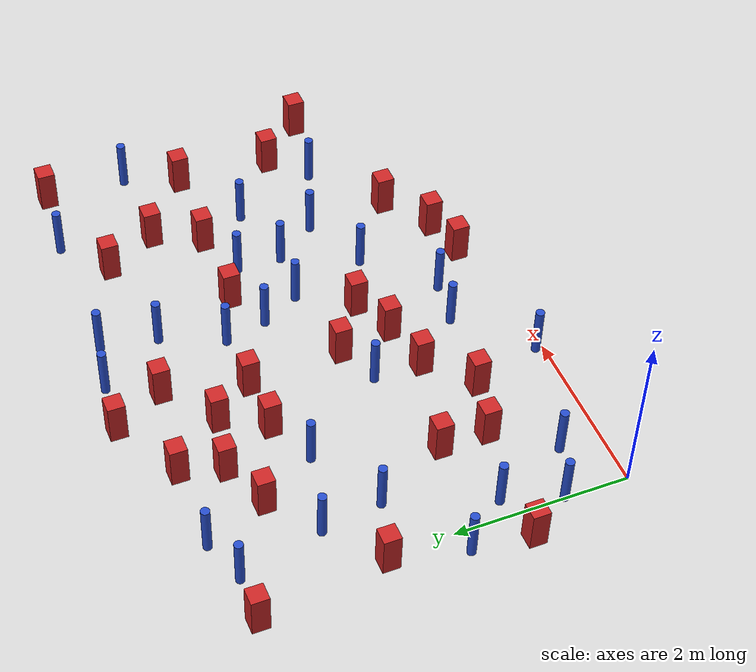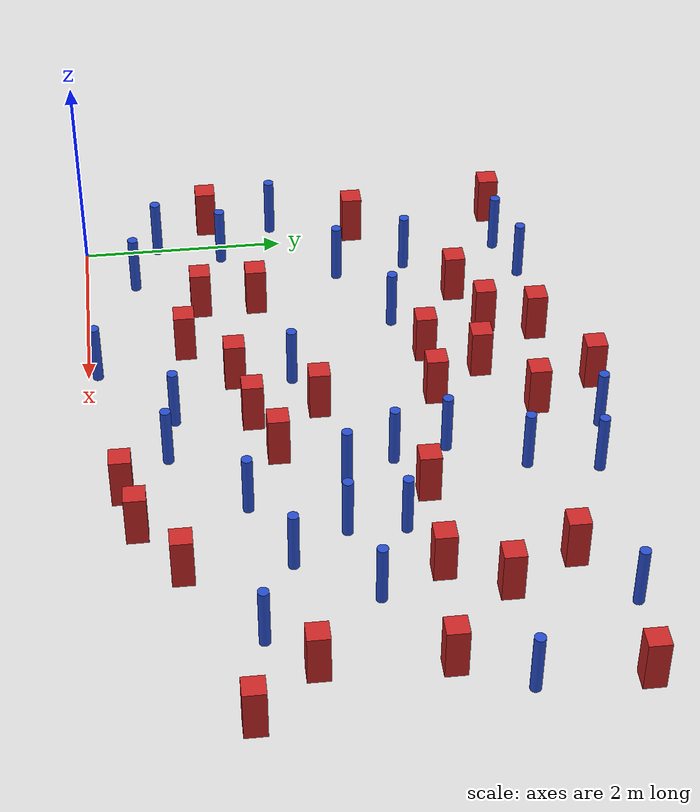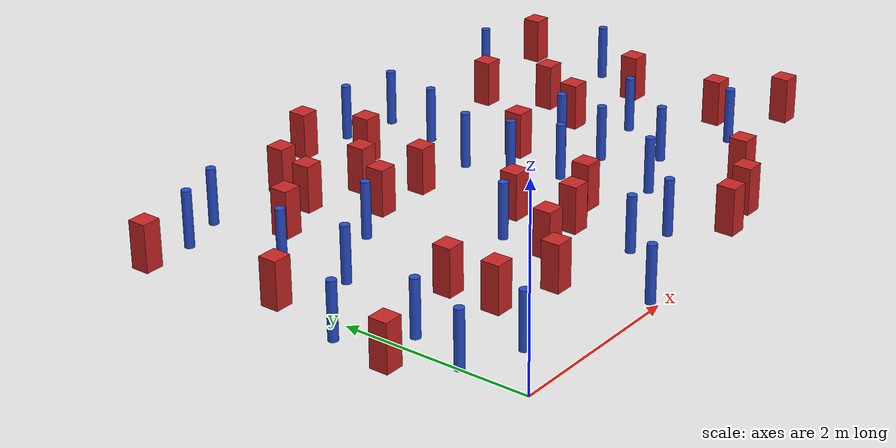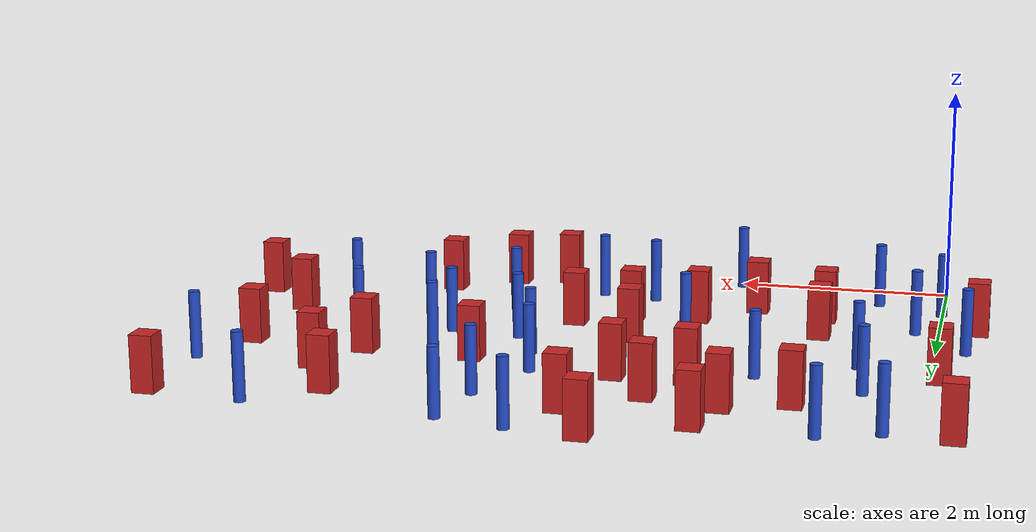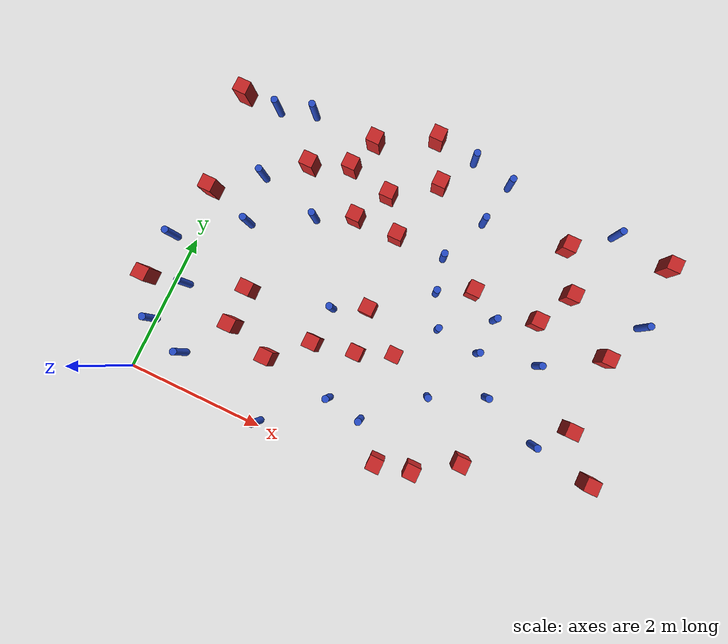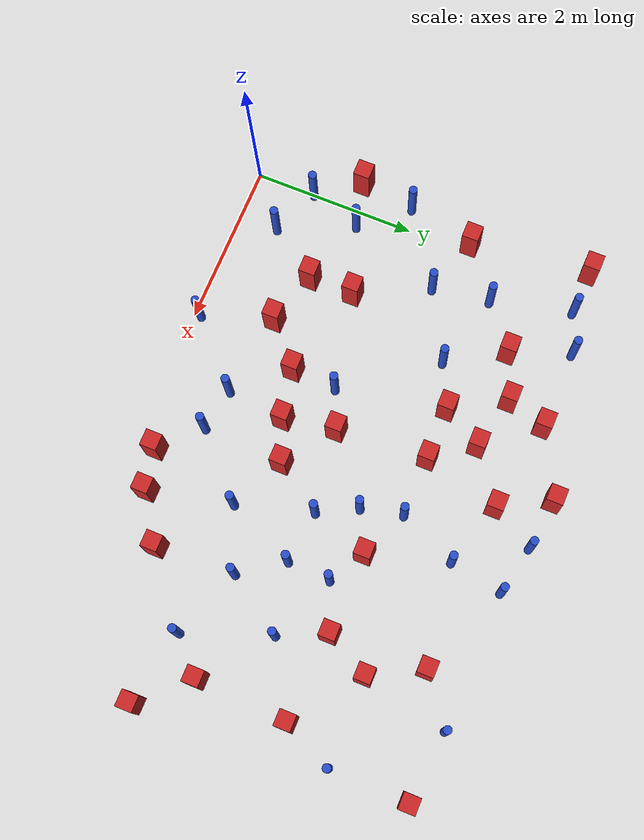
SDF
<sdf version="1.6">
 <model name="dense_25">
  <model name="square_post_obstacle2">
   <static>true</static>
   <pose>1.05752300624 1.68176623114 8.22691968438e-08 7.2212513382e-06 -7.54495500217e-07 2.29674213826e-05</pose>
   <link name="link">
    <pose>0 0 0.25 0 -0 0</pose>
    <inertial>
     <mass>100</mass>
     <inertia>
      <ixx>0.166667</ixx>
      <ixy>0</ixy>
      <ixz>0</ixz>
      <iyy>0.166667</iyy>
      <iyz>0</iyz>
      <izz>0.166667</izz>
     </inertia>
    </inertial>
    <collision name="collision"><geometry><box><size>.2 .2 .5</size></box></geometry></collision>
    <visual name="visual">
     <geometry><box><size>.2 .2 .5</size></box></geometry>
     <material>
      <script><name>Gazebo/Red</name><uri>file://media/materials/scripts/gazebo.material</uri></script>
     </material>
    </visual>
   </link>
  </model>
  <model name="square_post_obstacle7">
   <static>true</static>
   <pose>3.69847838354 0.283628622711 8.22691968438e-08 7.2212513382e-06 -7.54495500217e-07 2.29674213826e-05</pose>
   <link name="link">
    <pose>0 0 0.25 0 -0 0</pose>
    <inertial>
     <mass>100</mass>
     <inertia>
      <ixx>0.166667</ixx>
      <ixy>0</ixy>
      <ixz>0</ixz>
      <iyy>0.166667</iyy>
      <iyz>0</iyz>
      <izz>0.166667</izz>
     </inertia>
    </inertial>
    <collision name="collision"><geometry><box><size>.2 .2 .5</size></box></geometry></collision>
    <visual name="visual">
     <geometry><box><size>.2 .2 .5</size></box></geometry>
     <material>
      <script><name>Gazebo/Red</name><uri>file://media/materials/scripts/gazebo.material</uri></script>
     </material>
    </visual>
   </link>
  </model>
  <model name="square_post_obstacle10">
   <static>true</static>
   <pose>1.06012387388 1.13206869176 8.22691968438e-08 7.2212513382e-06 -7.54495500217e-07 2.29674213826e-05</pose>
   <link name="link">
    <pose>0 0 0.25 0 -0 0</pose>
    <inertial>
     <mass>100</mass>
     <inertia>
      <ixx>0.166667</ixx>
      <ixy>0</ixy>
      <ixz>0</ixz>
      <iyy>0.166667</iyy>
      <iyz>0</iyz>
      <izz>0.166667</izz>
     </inertia>
    </inertial>
    <collision name="collision"><geometry><box><size>.2 .2 .5</size></box></geometry></collision>
    <visual name="visual">
     <geometry><box><size>.2 .2 .5</size></box></geometry>
     <material>
      <script><name>Gazebo/Red</name><uri>file://media/materials/scripts/gazebo.material</uri></script>
     </material>
    </visual>
   </link>
  </model>
  <model name="square_post_obstacle17">
   <static>true</static>
   <pose>4.7562189727 0.773854882955 8.22691968438e-08 7.2212513382e-06 -7.54495500217e-07 2.29674213826e-05</pose>
   <link name="link">
    <pose>0 0 0.25 0 -0 0</pose>
    <inertial>
     <mass>100</mass>
     <inertia>
      <ixx>0.166667</ixx>
      <ixy>0</ixy>
      <ixz>0</ixz>
      <iyy>0.166667</iyy>
      <iyz>0</iyz>
      <izz>0.166667</izz>
     </inertia>
    </inertial>
    <collision name="collision"><geometry><box><size>.2 .2 .5</size></box></geometry></collision>
    <visual name="visual">
     <geometry><box><size>.2 .2 .5</size></box></geometry>
     <material>
      <script><name>Gazebo/Red</name><uri>file://media/materials/scripts/gazebo.material</uri></script>
     </material>
    </visual>
   </link>
  </model>
  <model name="square_post_obstacle21">
   <static>true</static>
   <pose>6.45568140457 1.25670714428 8.22691968438e-08 7.2212513382e-06 -7.54495500217e-07 2.29674213826e-05</pose>
   <link name="link">
    <pose>0 0 0.25 0 -0 0</pose>
    <inertial>
     <mass>100</mass>
     <inertia>
      <ixx>0.166667</ixx>
      <ixy>0</ixy>
      <ixz>0</ixz>
      <iyy>0.166667</iyy>
      <iyz>0</iyz>
      <izz>0.166667</izz>
     </inertia>
    </inertial>
    <collision name="collision"><geometry><box><size>.2 .2 .5</size></box></geometry></collision>
    <visual name="visual">
     <geometry><box><size>.2 .2 .5</size></box></geometry>
     <material>
      <script><name>Gazebo/Red</name><uri>file://media/materials/scripts/gazebo.material</uri></script>
     </material>
    </visual>
   </link>
  </model>
  <model name="pole_obstacle27">
   <static>true</static>
   <pose>3.25971585323 0.710181024626 2.88873142074e-08 -9.90536689285e-09 4.60219949002e-07 -1.20965994953e-07</pose>
   <link name="link">
    <pose>0 0 0.3 0 -0 0</pose>
    <inertial>
     <mass>1</mass>
     <inertia><ixx>0.145833</ixx><ixy>0</ixy><ixz>0</ixz><iyy>0.145833</iyy><iyz>0</iyz><izz>0.125</izz></inertia>
    </inertial>
    <collision name="collision">
     <geometry><cylinder><radius>0.05</radius><length>.6</length></cylinder></geometry>
    </collision>
    <visual name="visual">
     <geometry><cylinder><radius>0.05</radius><length>.6</length></cylinder></geometry>
     <material>
      <script><name>Gazebo/Blue</name><uri>file://media/materials/scripts/gazebo.material</uri></script>
     </material>
    </visual>
   </link>
  </model>
  <model name="pole_obstacle41">
   <static>true</static>
   <pose>5.18488431117 2.42695143436 2.88873142074e-08 -9.90536690245e-09 4.6021994898e-07 -1.20965994966e-07</pose>
   <link name="link">
    <pose>0 0 0.3 0 -0 0</pose>
    <inertial>
     <mass>1</mass>
     <inertia><ixx>0.145833</ixx><ixy>0</ixy><ixz>0</ixz><iyy>0.145833</iyy><iyz>0</iyz><izz>0.125</izz></inertia>
    </inertial>
    <collision name="collision">
     <geometry><cylinder><radius>0.05</radius><length>.6</length></cylinder></geometry>
    </collision>
    <visual name="visual">
     <geometry><cylinder><radius>0.05</radius><length>.6</length></cylinder></geometry>
     <material>
      <script><name>Gazebo/Blue</name><uri>file://media/materials/scripts/gazebo.material</uri></script>
     </material>
    </visual>
   </link>
  </model>
  <model name="pole_obstacle44">
   <static>true</static>
   <pose>-0.259046018101 1.92639556292 2.88873142074e-08 -9.9053668969e-09 4.60219948993e-07 -1.20965994957e-07</pose>
   <link name="link">
    <pose>0 0 0.3 0 -0 0</pose>
    <inertial>
     <mass>1</mass>
     <inertia><ixx>0.145833</ixx><ixy>0</ixy><ixz>0</ixz><iyy>0.145833</iyy><iyz>0</iyz><izz>0.125</izz></inertia>
    </inertial>
    <collision name="collision">
     <geometry><cylinder><radius>0.05</radius><length>.6</length></cylinder></geometry>
    </collision>
    <visual name="visual">
     <geometry><cylinder><radius>0.05</radius><length>.6</length></cylinder></geometry>
     <material>
      <script><name>Gazebo/Blue</name><uri>file://media/materials/scripts/gazebo.material</uri></script>
     </material>
    </visual>
   </link>
  </model>
  <model name="pole_obstacle45">
   <static>true</static>
   <pose>3.97215387689 1.3896070158 2.88873142074e-08 -9.90536689315e-09 4.60219949002e-07 -1.20965994954e-07</pose>
   <link name="link">
    <pose>0 0 0.3 0 -0 0</pose>
    <inertial>
     <mass>1</mass>
     <inertia><ixx>0.145833</ixx><ixy>0</ixy><ixz>0</ixz><iyy>0.145833</iyy><iyz>0</iyz><izz>0.125</izz></inertia>
    </inertial>
    <collision name="collision">
     <geometry><cylinder><radius>0.05</radius><length>.6</length></cylinder></geometry>
    </collision>
    <visual name="visual">
     <geometry><cylinder><radius>0.05</radius><length>.6</length></cylinder></geometry>
     <material>
      <script><name>Gazebo/Blue</name><uri>file://media/materials/scripts/gazebo.material</uri></script>
     </material>
    </visual>
   </link>
  </model>
  <model name="square_post_obstacle44">
   <static>true</static>
   <pose>6.30355910788 4.48778055035 8.22691968438e-08 7.2212513382e-06 -7.54495500217e-07 2.29674213826e-05</pose>
   <link name="link">
    <pose>0 0 0.25 0 -0 0</pose>
    <inertial>
     <mass>100</mass>
     <inertia>
      <ixx>0.166667</ixx>
      <ixy>0</ixy>
      <ixz>0</ixz>
      <iyy>0.166667</iyy>
      <iyz>0</iyz>
      <izz>0.166667</izz>
     </inertia>
    </inertial>
    <collision name="collision"><geometry><box><size>.2 .2 .5</size></box></geometry></collision>
    <visual name="visual">
     <geometry><box><size>.2 .2 .5</size></box></geometry>
     <material>
      <script><name>Gazebo/Red</name><uri>file://media/materials/scripts/gazebo.material</uri></script>
     </material>
    </visual>
   </link>
  </model>
  <model name="pole_obstacle49">
   <static>true</static>
   <pose>4.71426595015 1.72589574953 2.88873142074e-08 -9.90536689445e-09 4.60219948999e-07 -1.20965994956e-07</pose>
   <link name="link">
    <pose>0 0 0.3 0 -0 0</pose>
    <inertial>
     <mass>1</mass>
     <inertia><ixx>0.145833</ixx><ixy>0</ixy><ixz>0</ixz><iyy>0.145833</iyy><iyz>0</iyz><izz>0.125</izz></inertia>
    </inertial>
    <collision name="collision">
     <geometry><cylinder><radius>0.05</radius><length>.6</length></cylinder></geometry>
    </collision>
    <visual name="visual">
     <geometry><cylinder><radius>0.05</radius><length>.6</length></cylinder></geometry>
     <material>
      <script><name>Gazebo/Blue</name><uri>file://media/materials/scripts/gazebo.material</uri></script>
     </material>
    </visual>
   </link>
  </model>
  <model name="square_post_obstacle54">
   <static>true</static>
   <pose>1.7156146805 0.942488484448 8.22691968438e-08 7.2212513382e-06 -7.54495500217e-07 2.29674213826e-05</pose>
   <link name="link">
    <pose>0 0 0.25 0 -0 0</pose>
    <inertial>
     <mass>100</mass>
     <inertia>
      <ixx>0.166667</ixx>
      <ixy>0</ixy>
      <ixz>0</ixz>
      <iyy>0.166667</iyy>
      <iyz>0</iyz>
      <izz>0.166667</izz>
     </inertia>
    </inertial>
    <collision name="collision"><geometry><box><size>.2 .2 .5</size></box></geometry></collision>
    <visual name="visual">
     <geometry><box><size>.2 .2 .5</size></box></geometry>
     <material>
      <script><name>Gazebo/Red</name><uri>file://media/materials/scripts/gazebo.material</uri></script>
     </material>
    </visual>
   </link>
  </model>
  <model name="square_post_obstacle57">
   <static>true</static>
   <pose>5.21335566755 3.52832100325 8.22691968438e-08 7.2212513382e-06 -7.54495500217e-07 2.29674213826e-05</pose>
   <link name="link">
    <pose>0 0 0.25 0 -0 0</pose>
    <inertial>
     <mass>100</mass>
     <inertia>
      <ixx>0.166667</ixx>
      <ixy>0</ixy>
      <ixz>0</ixz>
      <iyy>0.166667</iyy>
      <iyz>0</iyz>
      <izz>0.166667</izz>
     </inertia>
    </inertial>
    <collision name="collision"><geometry><box><size>.2 .2 .5</size></box></geometry></collision>
    <visual name="visual">
     <geometry><box><size>.2 .2 .5</size></box></geometry>
     <material>
      <script><name>Gazebo/Red</name><uri>file://media/materials/scripts/gazebo.material</uri></script>
     </material>
    </visual>
   </link>
  </model>
  <model name="pole_obstacle56">
   <static>true</static>
   <pose>3.71044648429 2.29824718554 2.88873142074e-08 -9.90536690232e-09 4.6021994898e-07 -1.20965994968e-07</pose>
   <link name="link">
    <pose>0 0 0.3 0 -0 0</pose>
    <inertial>
     <mass>1</mass>
     <inertia><ixx>0.145833</ixx><ixy>0</ixy><ixz>0</ixz><iyy>0.145833</iyy><iyz>0</iyz><izz>0.125</izz></inertia>
    </inertial>
    <collision name="collision">
     <geometry><cylinder><radius>0.05</radius><length>.6</length></cylinder></geometry>
    </collision>
    <visual name="visual">
     <geometry><cylinder><radius>0.05</radius><length>.6</length></cylinder></geometry>
     <material>
      <script><name>Gazebo/Blue</name><uri>file://media/materials/scripts/gazebo.material</uri></script>
     </material>
    </visual>
   </link>
  </model>
  <model name="pole_obstacle69">
   <static>true</static>
   <pose>6.29559286488 3.53321743497 2.88873142074e-08 -9.90536690245e-09 4.6021994898e-07 -1.20965994966e-07</pose>
   <link name="link">
    <pose>0 0 0.3 0 -0 0</pose>
    <inertial>
     <mass>1</mass>
     <inertia><ixx>0.145833</ixx><ixy>0</ixy><ixz>0</ixz><iyy>0.145833</iyy><iyz>0</iyz><izz>0.125</izz></inertia>
    </inertial>
    <collision name="collision">
     <geometry><cylinder><radius>0.05</radius><length>.6</length></cylinder></geometry>
    </collision>
    <visual name="visual">
     <geometry><cylinder><radius>0.05</radius><length>.6</length></cylinder></geometry>
     <material>
      <script><name>Gazebo/Blue</name><uri>file://media/materials/scripts/gazebo.material</uri></script>
     </material>
    </visual>
   </link>
  </model>
  <model name="pole_obstacle78">
   <static>true</static>
   <pose>0.0105703775134 0.736466215707 2.88873142074e-08 -9.90536690131e-09 4.60219948982e-07 -1.20965994965e-07</pose>
   <link name="link">
    <pose>0 0 0.3 0 -0 0</pose>
    <inertial>
     <mass>1</mass>
     <inertia><ixx>0.145833</ixx><ixy>0</ixy><ixz>0</ixz><iyy>0.145833</iyy><iyz>0</iyz><izz>0.125</izz></inertia>
    </inertial>
    <collision name="collision">
     <geometry><cylinder><radius>0.05</radius><length>.6</length></cylinder></geometry>
    </collision>
    <visual name="visual">
     <geometry><cylinder><radius>0.05</radius><length>.6</length></cylinder></geometry>
     <material>
      <script><name>Gazebo/Blue</name><uri>file://media/materials/scripts/gazebo.material</uri></script>
     </material>
    </visual>
   </link>
  </model>
  <model name="pole_obstacle82">
   <static>true</static>
   <pose>0.21373768609 1.38207081856 2.88873142074e-08 -9.90536690118e-09 4.60219948983e-07 -1.20965994965e-07</pose>
   <link name="link">
    <pose>0 0 0.3 0 -0 0</pose>
    <inertial>
     <mass>1</mass>
     <inertia><ixx>0.145833</ixx><ixy>0</ixy><ixz>0</ixz><iyy>0.145833</iyy><iyz>0</iyz><izz>0.125</izz></inertia>
    </inertial>
    <collision name="collision">
     <geometry><cylinder><radius>0.05</radius><length>.6</length></cylinder></geometry>
    </collision>
    <visual name="visual">
     <geometry><cylinder><radius>0.05</radius><length>.6</length></cylinder></geometry>
     <material>
      <script><name>Gazebo/Blue</name><uri>file://media/materials/scripts/gazebo.material</uri></script>
     </material>
    </visual>
   </link>
  </model>
  <model name="pole_obstacle84">
   <static>true</static>
   <pose>0.608661664076 0.492104536853 2.88873142074e-08 -9.90536689656e-09 4.60219948993e-07 -1.20965994957e-07</pose>
   <link name="link">
    <pose>0 0 0.3 0 -0 0</pose>
    <inertial>
     <mass>1</mass>
     <inertia><ixx>0.145833</ixx><ixy>0</ixy><ixz>0</ixz><iyy>0.145833</iyy><iyz>0</iyz><izz>0.125</izz></inertia>
    </inertial>
    <collision name="collision">
     <geometry><cylinder><radius>0.05</radius><length>.6</length></cylinder></geometry>
    </collision>
    <visual name="visual">
     <geometry><cylinder><radius>0.05</radius><length>.6</length></cylinder></geometry>
     <material>
      <script><name>Gazebo/Blue</name><uri>file://media/materials/scripts/gazebo.material</uri></script>
     </material>
    </visual>
   </link>
  </model>
  <model name="pole_obstacle85">
   <static>true</static>
   <pose>1.99145522379 0.0883656927276 2.88873142074e-08 -9.90536691348e-09 4.60219948953e-07 -1.20965994985e-07</pose>
   <link name="link">
    <pose>0 0 0.3 0 -0 0</pose>
    <inertial>
     <mass>1</mass>
     <inertia><ixx>0.145833</ixx><ixy>0</ixy><ixz>0</ixz><iyy>0.145833</iyy><iyz>0</iyz><izz>0.125</izz></inertia>
    </inertial>
    <collision name="collision">
     <geometry><cylinder><radius>0.05</radius><length>.6</length></cylinder></geometry>
    </collision>
    <visual name="visual">
     <geometry><cylinder><radius>0.05</radius><length>.6</length></cylinder></geometry>
     <material>
      <script><name>Gazebo/Blue</name><uri>file://media/materials/scripts/gazebo.material</uri></script>
     </material>
    </visual>
   </link>
  </model>
  <model name="pole_obstacle86">
   <static>true</static>
   <pose>0.523984293658 3.24302448291 2.88873142074e-08 -9.90536689505e-09 4.60219948997e-07 -1.20965994956e-07</pose>
   <link name="link">
    <pose>0 0 0.3 0 -0 0</pose>
    <inertial>
     <mass>1</mass>
     <inertia><ixx>0.145833</ixx><ixy>0</ixy><ixz>0</ixz><iyy>0.145833</iyy><iyz>0</iyz><izz>0.125</izz></inertia>
    </inertial>
    <collision name="collision">
     <geometry><cylinder><radius>0.05</radius><length>.6</length></cylinder></geometry>
    </collision>
    <visual name="visual">
     <geometry><cylinder><radius>0.05</radius><length>.6</length></cylinder></geometry>
     <material>
      <script><name>Gazebo/Blue</name><uri>file://media/materials/scripts/gazebo.material</uri></script>
     </material>
    </visual>
   </link>
  </model>
  <model name="pole_obstacle87">
   <static>true</static>
   <pose>4.35390807123 2.2327341651 2.88873142074e-08 -9.90536690245e-09 4.6021994898e-07 -1.20965994966e-07</pose>
   <link name="link">
    <pose>0 0 0.3 0 -0 0</pose>
    <inertial>
     <mass>1</mass>
     <inertia><ixx>0.145833</ixx><ixy>0</ixy><ixz>0</ixz><iyy>0.145833</iyy><iyz>0</iyz><izz>0.125</izz></inertia>
    </inertial>
    <collision name="collision">
     <geometry><cylinder><radius>0.05</radius><length>.6</length></cylinder></geometry>
    </collision>
    <visual name="visual">
     <geometry><cylinder><radius>0.05</radius><length>.6</length></cylinder></geometry>
     <material>
      <script><name>Gazebo/Blue</name><uri>file://media/materials/scripts/gazebo.material</uri></script>
     </material>
    </visual>
   </link>
  </model>
  <model name="pole_obstacle98">
   <static>true</static>
   <pose>5.56217445543 1.40648228304 2.88873142074e-08 -9.90536689445e-09 4.60219948999e-07 -1.20965994956e-07</pose>
   <link name="link">
    <pose>0 0 0.3 0 -0 0</pose>
    <inertial>
     <mass>1</mass>
     <inertia><ixx>0.145833</ixx><ixy>0</ixy><ixz>0</ixz><iyy>0.145833</iyy><iyz>0</iyz><izz>0.125</izz></inertia>
    </inertial>
    <collision name="collision">
     <geometry><cylinder><radius>0.05</radius><length>.6</length></cylinder></geometry>
    </collision>
    <visual name="visual">
     <geometry><cylinder><radius>0.05</radius><length>.6</length></cylinder></geometry>
     <material>
      <script><name>Gazebo/Blue</name><uri>file://media/materials/scripts/gazebo.material</uri></script>
     </material>
    </visual>
   </link>
  </model>
  <model name="pole_obstacle100">
   <static>true</static>
   <pose>5.44715196854 4.5788040256 2.88873142074e-08 -9.90536690842e-09 4.60219948965e-07 -1.20965994976e-07</pose>
   <link name="link">
    <pose>0 0 0.3 0 -0 0</pose>
    <inertial>
     <mass>1</mass>
     <inertia><ixx>0.145833</ixx><ixy>0</ixy><ixz>0</ixz><iyy>0.145833</iyy><iyz>0</iyz><izz>0.125</izz></inertia>
    </inertial>
    <collision name="collision">
     <geometry><cylinder><radius>0.05</radius><length>.6</length></cylinder></geometry>
    </collision>
    <visual name="visual">
     <geometry><cylinder><radius>0.05</radius><length>.6</length></cylinder></geometry>
     <material>
      <script><name>Gazebo/Blue</name><uri>file://media/materials/scripts/gazebo.material</uri></script>
     </material>
    </visual>
   </link>
  </model>
  <model name="square_post_obstacle90">
   <static>true</static>
   <pose>4.19303620978 0.398959268594 8.22691968438e-08 7.2212513382e-06 -7.54495500217e-07 2.29674213826e-05</pose>
   <link name="link">
    <pose>0 0 0.25 0 -0 0</pose>
    <inertial>
     <mass>100</mass>
     <inertia>
      <ixx>0.166667</ixx>
      <ixy>0</ixy>
      <ixz>0</ixz>
      <iyy>0.166667</iyy>
      <iyz>0</iyz>
      <izz>0.166667</izz>
     </inertia>
    </inertial>
    <collision name="collision"><geometry><box><size>.2 .2 .5</size></box></geometry></collision>
    <visual name="visual">
     <geometry><box><size>.2 .2 .5</size></box></geometry>
     <material>
      <script><name>Gazebo/Red</name><uri>file://media/materials/scripts/gazebo.material</uri></script>
     </material>
    </visual>
   </link>
  </model>
  <model name="square_post_obstacle92">
   <static>true</static>
   <pose>2.70662991358 2.15097162154 8.22691968438e-08 7.2212513382e-06 -7.54495500217e-07 2.29674213826e-05</pose>
   <link name="link">
    <pose>0 0 0.25 0 -0 0</pose>
    <inertial>
     <mass>100</mass>
     <inertia>
      <ixx>0.166667</ixx>
      <ixy>0</ixy>
      <ixz>0</ixz>
      <iyy>0.166667</iyy>
      <iyz>0</iyz>
      <izz>0.166667</izz>
     </inertia>
    </inertial>
    <collision name="collision"><geometry><box><size>.2 .2 .5</size></box></geometry></collision>
    <visual name="visual">
     <geometry><box><size>.2 .2 .5</size></box></geometry>
     <material>
      <script><name>Gazebo/Red</name><uri>file://media/materials/scripts/gazebo.material</uri></script>
     </material>
    </visual>
   </link>
  </model>
  <model name="square_post_obstacle99">
   <static>true</static>
   <pose>6.00378001598 2.92106011117 8.22691968438e-08 7.2212513382e-06 -7.54495500217e-07 2.29674213826e-05</pose>
   <link name="link">
    <pose>0 0 0.25 0 -0 0</pose>
    <inertial>
     <mass>100</mass>
     <inertia>
      <ixx>0.166667</ixx>
      <ixy>0</ixy>
      <ixz>0</ixz>
      <iyy>0.166667</iyy>
      <iyz>0</iyz>
      <izz>0.166667</izz>
     </inertia>
    </inertial>
    <collision name="collision"><geometry><box><size>.2 .2 .5</size></box></geometry></collision>
    <visual name="visual">
     <geometry><box><size>.2 .2 .5</size></box></geometry>
     <material>
      <script><name>Gazebo/Red</name><uri>file://media/materials/scripts/gazebo.material</uri></script>
     </material>
    </visual>
   </link>
  </model>
  <model name="pole_obstacle113">
   <static>true</static>
   <pose>0.784421894727 4.39077616772 2.88873142074e-08 -9.90536689661e-09 4.60219948993e-07 -1.20965994957e-07</pose>
   <link name="link">
    <pose>0 0 0.3 0 -0 0</pose>
    <inertial>
     <mass>1</mass>
     <inertia><ixx>0.145833</ixx><ixy>0</ixy><ixz>0</ixz><iyy>0.145833</iyy><iyz>0</iyz><izz>0.125</izz></inertia>
    </inertial>
    <collision name="collision">
     <geometry><cylinder><radius>0.05</radius><length>.6</length></cylinder></geometry>
    </collision>
    <visual name="visual">
     <geometry><cylinder><radius>0.05</radius><length>.6</length></cylinder></geometry>
     <material>
      <script><name>Gazebo/Blue</name><uri>file://media/materials/scripts/gazebo.material</uri></script>
     </material>
    </visual>
   </link>
  </model>
  <model name="square_post_obstacle107">
   <static>true</static>
   <pose>2.81394870366 1.51973048059 8.22691968438e-08 7.2212513382e-06 -7.54495500217e-07 2.29674213826e-05</pose>
   <link name="link">
    <pose>0 0 0.25 0 -0 0</pose>
    <inertial>
     <mass>100</mass>
     <inertia>
      <ixx>0.166667</ixx>
      <ixy>0</ixy>
      <ixz>0</ixz>
      <iyy>0.166667</iyy>
      <iyz>0</iyz>
      <izz>0.166667</izz>
     </inertia>
    </inertial>
    <collision name="collision"><geometry><box><size>.2 .2 .5</size></box></geometry></collision>
    <visual name="visual">
     <geometry><box><size>.2 .2 .5</size></box></geometry>
     <material>
      <script><name>Gazebo/Red</name><uri>file://media/materials/scripts/gazebo.material</uri></script>
     </material>
    </visual>
   </link>
  </model>
  <model name="pole_obstacle123">
   <static>true</static>
   <pose>0.280689724129 4.22093316909 2.88873142074e-08 -9.90536689592e-09 4.60219948995e-07 -1.20965994956e-07</pose>
   <link name="link">
    <pose>0 0 0.3 0 -0 0</pose>
    <inertial>
     <mass>1</mass>
     <inertia><ixx>0.145833</ixx><ixy>0</ixy><ixz>0</ixz><iyy>0.145833</iyy><iyz>0</iyz><izz>0.125</izz></inertia>
    </inertial>
    <collision name="collision">
     <geometry><cylinder><radius>0.05</radius><length>.6</length></cylinder></geometry>
    </collision>
    <visual name="visual">
     <geometry><cylinder><radius>0.05</radius><length>.6</length></cylinder></geometry>
     <material>
      <script><name>Gazebo/Blue</name><uri>file://media/materials/scripts/gazebo.material</uri></script>
     </material>
    </visual>
   </link>
  </model>
  <model name="pole_obstacle127">
   <static>true</static>
   <pose>1.45623892513 2.99795898132 2.88873142074e-08 -9.90536689791e-09 4.6021994899e-07 -1.20965994959e-07</pose>
   <link name="link">
    <pose>0 0 0.3 0 -0 0</pose>
    <inertial>
     <mass>1</mass>
     <inertia><ixx>0.145833</ixx><ixy>0</ixy><ixz>0</ixz><iyy>0.145833</iyy><iyz>0</iyz><izz>0.125</izz></inertia>
    </inertial>
    <collision name="collision">
     <geometry><cylinder><radius>0.05</radius><length>.6</length></cylinder></geometry>
    </collision>
    <visual name="visual">
     <geometry><cylinder><radius>0.05</radius><length>.6</length></cylinder></geometry>
     <material>
      <script><name>Gazebo/Blue</name><uri>file://media/materials/scripts/gazebo.material</uri></script>
     </material>
    </visual>
   </link>
  </model>
  <model name="pole_obstacle128">
   <static>true</static>
   <pose>3.17594143469 4.73082257719 2.88873142074e-08 -9.90536689859e-09 4.60219948989e-07 -1.20965994961e-07</pose>
   <link name="link">
    <pose>0 0 0.3 0 -0 0</pose>
    <inertial>
     <mass>1</mass>
     <inertia><ixx>0.145833</ixx><ixy>0</ixy><ixz>0</ixz><iyy>0.145833</iyy><iyz>0</iyz><izz>0.125</izz></inertia>
    </inertial>
    <collision name="collision">
     <geometry><cylinder><radius>0.05</radius><length>.6</length></cylinder></geometry>
    </collision>
    <visual name="visual">
     <geometry><cylinder><radius>0.05</radius><length>.6</length></cylinder></geometry>
     <material>
      <script><name>Gazebo/Blue</name><uri>file://media/materials/scripts/gazebo.material</uri></script>
     </material>
    </visual>
   </link>
  </model>
  <model name="pole_obstacle131">
   <static>true</static>
   <pose>3.47264341214 2.75851049705 2.88873142074e-08 -9.90536690232e-09 4.6021994898e-07 -1.20965994968e-07</pose>
   <link name="link">
    <pose>0 0 0.3 0 -0 0</pose>
    <inertial>
     <mass>1</mass>
     <inertia><ixx>0.145833</ixx><ixy>0</ixy><ixz>0</ixz><iyy>0.145833</iyy><iyz>0</iyz><izz>0.125</izz></inertia>
    </inertial>
    <collision name="collision">
     <geometry><cylinder><radius>0.05</radius><length>.6</length></cylinder></geometry>
    </collision>
    <visual name="visual">
     <geometry><cylinder><radius>0.05</radius><length>.6</length></cylinder></geometry>
     <material>
      <script><name>Gazebo/Blue</name><uri>file://media/materials/scripts/gazebo.material</uri></script>
     </material>
    </visual>
   </link>
  </model>
  <model name="square_post_obstacle119">
   <static>true</static>
   <pose>4.92586352393 2.99164080715 8.22691968438e-08 7.2212513382e-06 -7.54495500217e-07 2.29674213826e-05</pose>
   <link name="link">
    <pose>0 0 0.25 0 -0 0</pose>
    <inertial>
     <mass>100</mass>
     <inertia>
      <ixx>0.166667</ixx>
      <ixy>0</ixy>
      <ixz>0</ixz>
      <iyy>0.166667</iyy>
      <iyz>0</iyz>
      <izz>0.166667</izz>
     </inertia>
    </inertial>
    <collision name="collision"><geometry><box><size>.2 .2 .5</size></box></geometry></collision>
    <visual name="visual">
     <geometry><box><size>.2 .2 .5</size></box></geometry>
     <material>
      <script><name>Gazebo/Red</name><uri>file://media/materials/scripts/gazebo.material</uri></script>
     </material>
    </visual>
   </link>
  </model>
  <model name="pole_obstacle139">
   <static>true</static>
   <pose>3.35539292262 3.25813640397 2.88873142074e-08 -9.90536690232e-09 4.6021994898e-07 -1.20965994968e-07</pose>
   <link name="link">
    <pose>0 0 0.3 0 -0 0</pose>
    <inertial>
     <mass>1</mass>
     <inertia><ixx>0.145833</ixx><ixy>0</ixy><ixz>0</ixz><iyy>0.145833</iyy><iyz>0</iyz><izz>0.125</izz></inertia>
    </inertial>
    <collision name="collision">
     <geometry><cylinder><radius>0.05</radius><length>.6</length></cylinder></geometry>
    </collision>
    <visual name="visual">
     <geometry><cylinder><radius>0.05</radius><length>.6</length></cylinder></geometry>
     <material>
      <script><name>Gazebo/Blue</name><uri>file://media/materials/scripts/gazebo.material</uri></script>
     </material>
    </visual>
   </link>
  </model>
  <model name="square_post_obstacle124">
   <static>true</static>
   <pose>1.76323017512 4.37429988424 8.22691968438e-08 7.2212513382e-06 -7.54495500217e-07 2.29674213826e-05</pose>
   <link name="link">
    <pose>0 0 0.25 0 -0 0</pose>
    <inertial>
     <mass>100</mass>
     <inertia>
      <ixx>0.166667</ixx>
      <ixy>0</ixy>
      <ixz>0</ixz>
      <iyy>0.166667</iyy>
      <iyz>0</iyz>
      <izz>0.166667</izz>
     </inertia>
    </inertial>
    <collision name="collision"><geometry><box><size>.2 .2 .5</size></box></geometry></collision>
    <visual name="visual">
     <geometry><box><size>.2 .2 .5</size></box></geometry>
     <material>
      <script><name>Gazebo/Red</name><uri>file://media/materials/scripts/gazebo.material</uri></script>
     </material>
    </visual>
   </link>
  </model>
  <model name="square_post_obstacle129">
   <static>true</static>
   <pose>1.6125320471 3.89478876554 8.22691968438e-08 7.2212513382e-06 -7.54495500217e-07 2.29674213826e-05</pose>
   <link name="link">
    <pose>0 0 0.25 0 -0 0</pose>
    <inertial>
     <mass>100</mass>
     <inertia>
      <ixx>0.166667</ixx>
      <ixy>0</ixy>
      <ixz>0</ixz>
      <iyy>0.166667</iyy>
      <iyz>0</iyz>
      <izz>0.166667</izz>
     </inertia>
    </inertial>
    <collision name="collision"><geometry><box><size>.2 .2 .5</size></box></geometry></collision>
    <visual name="visual">
     <geometry><box><size>.2 .2 .5</size></box></geometry>
     <material>
      <script><name>Gazebo/Red</name><uri>file://media/materials/scripts/gazebo.material</uri></script>
     </material>
    </visual>
   </link>
  </model>
  <model name="square_post_obstacle136">
   <static>true</static>
   <pose>2.20929106963 1.39264731162 8.22691968438e-08 7.2212513382e-06 -7.54495500217e-07 2.29674213826e-05</pose>
   <link name="link">
    <pose>0 0 0.25 0 -0 0</pose>
    <inertial>
     <mass>100</mass>
     <inertia>
      <ixx>0.166667</ixx>
      <ixy>0</ixy>
      <ixz>0</ixz>
      <iyy>0.166667</iyy>
      <iyz>0</iyz>
      <izz>0.166667</izz>
     </inertia>
    </inertial>
    <collision name="collision"><geometry><box><size>.2 .2 .5</size></box></geometry></collision>
    <visual name="visual">
     <geometry><box><size>.2 .2 .5</size></box></geometry>
     <material>
      <script><name>Gazebo/Red</name><uri>file://media/materials/scripts/gazebo.material</uri></script>
     </material>
    </visual>
   </link>
  </model>
  <model name="pole_obstacle161">
   <static>true</static>
   <pose>4.37640517105 2.7554859093 2.88873142074e-08 -9.90536690245e-09 4.6021994898e-07 -1.20965994966e-07</pose>
   <link name="link">
    <pose>0 0 0.3 0 -0 0</pose>
    <inertial>
     <mass>1</mass>
     <inertia><ixx>0.145833</ixx><ixy>0</ixy><ixz>0</ixz><iyy>0.145833</iyy><iyz>0</iyz><izz>0.125</izz></inertia>
    </inertial>
    <collision name="collision">
     <geometry><cylinder><radius>0.05</radius><length>.6</length></cylinder></geometry>
    </collision>
    <visual name="visual">
     <geometry><cylinder><radius>0.05</radius><length>.6</length></cylinder></geometry>
     <material>
      <script><name>Gazebo/Blue</name><uri>file://media/materials/scripts/gazebo.material</uri></script>
     </material>
    </visual>
   </link>
  </model>
  <model name="square_post_obstacle155">
   <static>true</static>
   <pose>1.9850035333 3.25444834209 8.22691968438e-08 7.2212513382e-06 -7.54495500217e-07 2.29674213826e-05</pose>
   <link name="link">
    <pose>0 0 0.25 0 -0 0</pose>
    <inertial>
     <mass>100</mass>
     <inertia>
      <ixx>0.166667</ixx>
      <ixy>0</ixy>
      <ixz>0</ixz>
      <iyy>0.166667</iyy>
      <iyz>0</iyz>
      <izz>0.166667</izz>
     </inertia>
    </inertial>
    <collision name="collision"><geometry><box><size>.2 .2 .5</size></box></geometry></collision>
    <visual name="visual">
     <geometry><box><size>.2 .2 .5</size></box></geometry>
     <material>
      <script><name>Gazebo/Red</name><uri>file://media/materials/scripts/gazebo.material</uri></script>
     </material>
    </visual>
   </link>
  </model>
  <model name="pole_obstacle164">
   <static>true</static>
   <pose>3.66343606156 3.96158545792 2.88873142074e-08 -9.90536690801e-09 4.60219948966e-07 -1.20965994976e-07</pose>
   <link name="link">
    <pose>0 0 0.3 0 -0 0</pose>
    <inertial>
     <mass>1</mass>
     <inertia><ixx>0.145833</ixx><ixy>0</ixy><ixz>0</ixz><iyy>0.145833</iyy><iyz>0</iyz><izz>0.125</izz></inertia>
    </inertial>
    <collision name="collision">
     <geometry><cylinder><radius>0.05</radius><length>.6</length></cylinder></geometry>
    </collision>
    <visual name="visual">
     <geometry><cylinder><radius>0.05</radius><length>.6</length></cylinder></geometry>
     <material>
      <script><name>Gazebo/Blue</name><uri>file://media/materials/scripts/gazebo.material</uri></script>
     </material>
    </visual>
   </link>
  </model>
  <model name="square_post_obstacle161">
   <static>true</static>
   <pose>3.30918613439 1.71551098367 8.22691968438e-08 7.2212513382e-06 -7.54495500217e-07 2.29674213826e-05</pose>
   <link name="link">
    <pose>0 0 0.25 0 -0 0</pose>
    <inertial>
     <mass>100</mass>
     <inertia>
      <ixx>0.166667</ixx>
      <ixy>0</ixy>
      <ixz>0</ixz>
      <iyy>0.166667</iyy>
      <iyz>0</iyz>
      <izz>0.166667</izz>
     </inertia>
    </inertial>
    <collision name="collision"><geometry><box><size>.2 .2 .5</size></box></geometry></collision>
    <visual name="visual">
     <geometry><box><size>.2 .2 .5</size></box></geometry>
     <material>
      <script><name>Gazebo/Red</name><uri>file://media/materials/scripts/gazebo.material</uri></script>
     </material>
    </visual>
   </link>
  </model>
  <model name="pole_obstacle171">
   <static>true</static>
   <pose>2.73664677738 0.795445623623 2.88873142074e-08 -9.90536689285e-09 4.60219949002e-07 -1.20965994953e-07</pose>
   <link name="link">
    <pose>0 0 0.3 0 -0 0</pose>
    <inertial>
     <mass>1</mass>
     <inertia><ixx>0.145833</ixx><ixy>0</ixy><ixz>0</ixz><iyy>0.145833</iyy><iyz>0</iyz><izz>0.125</izz></inertia>
    </inertial>
    <collision name="collision">
     <geometry><cylinder><radius>0.05</radius><length>.6</length></cylinder></geometry>
    </collision>
    <visual name="visual">
     <geometry><cylinder><radius>0.05</radius><length>.6</length></cylinder></geometry>
     <material>
      <script><name>Gazebo/Blue</name><uri>file://media/materials/scripts/gazebo.material</uri></script>
     </material>
    </visual>
   </link>
  </model>
  <model name="pole_obstacle173">
   <static>true</static>
   <pose>2.24063462737 1.93702972418 2.88873142074e-08 -9.90536689395e-09 4.60219949e-07 -1.20965994953e-07</pose>
   <link name="link">
    <pose>0 0 0.3 0 -0 0</pose>
    <inertial>
     <mass>1</mass>
     <inertia><ixx>0.145833</ixx><ixy>0</ixy><ixz>0</ixz><iyy>0.145833</iyy><iyz>0</iyz><izz>0.125</izz></inertia>
    </inertial>
    <collision name="collision">
     <geometry><cylinder><radius>0.05</radius><length>.6</length></cylinder></geometry>
    </collision>
    <visual name="visual">
     <geometry><cylinder><radius>0.05</radius><length>.6</length></cylinder></geometry>
     <material>
      <script><name>Gazebo/Blue</name><uri>file://media/materials/scripts/gazebo.material</uri></script>
     </material>
    </visual>
   </link>
  </model>
  <model name="square_post_obstacle168">
   <static>true</static>
   <pose>5.94467701898 1.80822397821 8.22691968438e-08 7.2212513382e-06 -7.54495500217e-07 2.29674213826e-05</pose>
   <link name="link">
    <pose>0 0 0.25 0 -0 0</pose>
    <inertial>
     <mass>100</mass>
     <inertia>
      <ixx>0.166667</ixx>
      <ixy>0</ixy>
      <ixz>0</ixz>
      <iyy>0.166667</iyy>
      <iyz>0</iyz>
      <izz>0.166667</izz>
     </inertia>
    </inertial>
    <collision name="collision"><geometry><box><size>.2 .2 .5</size></box></geometry></collision>
    <visual name="visual">
     <geometry><box><size>.2 .2 .5</size></box></geometry>
     <material>
      <script><name>Gazebo/Red</name><uri>file://media/materials/scripts/gazebo.material</uri></script>
     </material>
    </visual>
   </link>
  </model>
  <model name="pole_obstacle182">
   <static>true</static>
   <pose>0.628853617149 2.53935068962 2.88873142074e-08 -9.90536689636e-09 4.60219948994e-07 -1.20965994958e-07</pose>
   <link name="link">
    <pose>0 0 0.3 0 -0 0</pose>
    <inertial>
     <mass>1</mass>
     <inertia><ixx>0.145833</ixx><ixy>0</ixy><ixz>0</ixz><iyy>0.145833</iyy><iyz>0</iyz><izz>0.125</izz></inertia>
    </inertial>
    <collision name="collision">
     <geometry><cylinder><radius>0.05</radius><length>.6</length></cylinder></geometry>
    </collision>
    <visual name="visual">
     <geometry><cylinder><radius>0.05</radius><length>.6</length></cylinder></geometry>
     <material>
      <script><name>Gazebo/Blue</name><uri>file://media/materials/scripts/gazebo.material</uri></script>
     </material>
    </visual>
   </link>
  </model>
  <model name="pole_obstacle185">
   <static>true</static>
   <pose>3.7789129944 4.60777826412 2.88873142074e-08 -9.90536689859e-09 4.60219948989e-07 -1.20965994961e-07</pose>
   <link name="link">
    <pose>0 0 0.3 0 -0 0</pose>
    <inertial>
     <mass>1</mass>
     <inertia><ixx>0.145833</ixx><ixy>0</ixy><ixz>0</ixz><iyy>0.145833</iyy><iyz>0</iyz><izz>0.125</izz></inertia>
    </inertial>
    <collision name="collision">
     <geometry><cylinder><radius>0.05</radius><length>.6</length></cylinder></geometry>
    </collision>
    <visual name="visual">
     <geometry><cylinder><radius>0.05</radius><length>.6</length></cylinder></geometry>
     <material>
      <script><name>Gazebo/Blue</name><uri>file://media/materials/scripts/gazebo.material</uri></script>
     </material>
    </visual>
   </link>
  </model>
  <model name="square_post_obstacle185">
   <static>true</static>
   <pose>1.05565635378 3.67389673857 8.22691968438e-08 7.2212513382e-06 -7.54495500217e-07 2.29674213826e-05</pose>
   <link name="link">
    <pose>0 0 0.25 0 -0 0</pose>
    <inertial>
     <mass>100</mass>
     <inertia>
      <ixx>0.166667</ixx>
      <ixy>0</ixy>
      <ixz>0</ixz>
      <iyy>0.166667</iyy>
      <iyz>0</iyz>
      <izz>0.166667</izz>
     </inertia>
    </inertial>
    <collision name="collision"><geometry><box><size>.2 .2 .5</size></box></geometry></collision>
    <visual name="visual">
     <geometry><box><size>.2 .2 .5</size></box></geometry>
     <material>
      <script><name>Gazebo/Red</name><uri>file://media/materials/scripts/gazebo.material</uri></script>
     </material>
    </visual>
   </link>
  </model>
  <model name="square_post_obstacle186">
   <static>true</static>
   <pose>4.88984238049 4.14314933035 8.22691968438e-08 7.2212513382e-06 -7.54495500217e-07 2.29674213826e-05</pose>
   <link name="link">
    <pose>0 0 0.25 0 -0 0</pose>
    <inertial>
     <mass>100</mass>
     <inertia>
      <ixx>0.166667</ixx>
      <ixy>0</ixy>
      <ixz>0</ixz>
      <iyy>0.166667</iyy>
      <iyz>0</iyz>
      <izz>0.166667</izz>
     </inertia>
    </inertial>
    <collision name="collision"><geometry><box><size>.2 .2 .5</size></box></geometry></collision>
    <visual name="visual">
     <geometry><box><size>.2 .2 .5</size></box></geometry>
     <material>
      <script><name>Gazebo/Red</name><uri>file://media/materials/scripts/gazebo.material</uri></script>
     </material>
    </visual>
   </link>
  </model>
  <model name="square_post_obstacle190">
   <static>true</static>
   <pose>-0.339102634479 1.26026787588 8.22691968438e-08 7.2212513382e-06 -7.54495500217e-07 2.29674213826e-05</pose>
   <link name="link">
    <pose>0 0 0.25 0 -0 0</pose>
    <inertial>
     <mass>100</mass>
     <inertia>
      <ixx>0.166667</ixx>
      <ixy>0</ixy>
      <ixz>0</ixz>
      <iyy>0.166667</iyy>
      <iyz>0</iyz>
      <izz>0.166667</izz>
     </inertia>
    </inertial>
    <collision name="collision"><geometry><box><size>.2 .2 .5</size></box></geometry></collision>
    <visual name="visual">
     <geometry><box><size>.2 .2 .5</size></box></geometry>
     <material>
      <script><name>Gazebo/Red</name><uri>file://media/materials/scripts/gazebo.material</uri></script>
     </material>
    </visual>
   </link>
  </model>
  <model name="square_post_obstacle198">
   <static>true</static>
   <pose>2.62771057106 3.26370215611 8.22691968438e-08 7.2212513382e-06 -7.54495500217e-07 2.29674213826e-05</pose>
   <link name="link">
    <pose>0 0 0.25 0 -0 0</pose>
    <inertial>
     <mass>100</mass>
     <inertia>
      <ixx>0.166667</ixx>
      <ixy>0</ixy>
      <ixz>0</ixz>
      <iyy>0.166667</iyy>
      <iyz>0</iyz>
      <izz>0.166667</izz>
     </inertia>
    </inertial>
    <collision name="collision"><geometry><box><size>.2 .2 .5</size></box></geometry></collision>
    <visual name="visual">
     <geometry><box><size>.2 .2 .5</size></box></geometry>
     <material>
      <script><name>Gazebo/Red</name><uri>file://media/materials/scripts/gazebo.material</uri></script>
     </material>
    </visual>
   </link>
  </model>
  <model name="square_post_obstacle199">
   <static>true</static>
   <pose>2.87201086483 4.19564037642 8.22691968438e-08 7.2212513382e-06 -7.54495500217e-07 2.29674213826e-05</pose>
   <link name="link">
    <pose>0 0 0.25 0 -0 0</pose>
    <inertial>
     <mass>100</mass>
     <inertia>
      <ixx>0.166667</ixx>
      <ixy>0</ixy>
      <ixz>0</ixz>
      <iyy>0.166667</iyy>
      <iyz>0</iyz>
      <izz>0.166667</izz>
     </inertia>
    </inertial>
    <collision name="collision"><geometry><box><size>.2 .2 .5</size></box></geometry></collision>
    <visual name="visual">
     <geometry><box><size>.2 .2 .5</size></box></geometry>
     <material>
      <script><name>Gazebo/Red</name><uri>file://media/materials/scripts/gazebo.material</uri></script>
     </material>
    </visual>
   </link>
  </model>
  <model name="square_post_obstacle201">
   <static>true</static>
   <pose>-0.074483538674 2.76652417153 8.22691968438e-08 7.2212513382e-06 -7.54495500217e-07 2.29674213826e-05</pose>
   <link name="link">
    <pose>0 0 0.25 0 -0 0</pose>
    <inertial>
     <mass>100</mass>
     <inertia>
      <ixx>0.166667</ixx>
      <ixy>0</ixy>
      <ixz>0</ixz>
      <iyy>0.166667</iyy>
      <iyz>0</iyz>
      <izz>0.166667</izz>
     </inertia>
    </inertial>
    <collision name="collision"><geometry><box><size>.2 .2 .5</size></box></geometry></collision>
    <visual name="visual">
     <geometry><box><size>.2 .2 .5</size></box></geometry>
     <material>
      <script><name>Gazebo/Red</name><uri>file://media/materials/scripts/gazebo.material</uri></script>
     </material>
    </visual>
   </link>
  </model>
  <model name="square_post_obstacle228">
   <static>true</static>
   <pose>2.55886003262 4.79333996466 8.22691968438e-08 7.22125133819e-06 -7.54495500217e-07 2.29674213826e-05</pose>
   <link name="link">
    <pose>0 0 0.25 0 -0 0</pose>
    <inertial>
     <mass>100</mass>
     <inertia>
      <ixx>0.166667</ixx>
      <ixy>0</ixy>
      <ixz>0</ixz>
      <iyy>0.166667</iyy>
      <iyz>0</iyz>
      <izz>0.166667</izz>
     </inertia>
    </inertial>
    <collision name="collision"><geometry><box><size>.2 .2 .5</size></box></geometry></collision>
    <visual name="visual">
     <geometry><box><size>.2 .2 .5</size></box></geometry>
     <material>
      <script><name>Gazebo/Red</name><uri>file://media/materials/scripts/gazebo.material</uri></script>
     </material>
    </visual>
   </link>
  </model>
  <model name="square_post_obstacle233">
   <static>true</static>
   <pose>-0.262476967378 4.23307996466 8.22691968438e-08 7.22125133819e-06 -7.54495500217e-07 2.29674213826e-05</pose>
   <link name="link">
    <pose>0 0 0.25 0 -0 0</pose>
    <inertial>
     <mass>100</mass>
     <inertia>
      <ixx>0.166667</ixx>
      <ixy>0</ixy>
      <ixz>0</ixz>
      <iyy>0.166667</iyy>
      <iyz>0</iyz>
      <izz>0.166667</izz>
     </inertia>
    </inertial>
    <collision name="collision"><geometry><box><size>.2 .2 .5</size></box></geometry></collision>
    <visual name="visual">
     <geometry><box><size>.2 .2 .5</size></box></geometry>
     <material>
      <script><name>Gazebo/Red</name><uri>file://media/materials/scripts/gazebo.material</uri></script>
     </material>
    </visual>
   </link>
  </model>
  <model name="square_post_obstacle234">
   <static>true</static>
   <pose>3.94087003262 3.00718996466 8.22691968438e-08 7.2212513382e-06 -7.54495500217e-07 2.29674213826e-05</pose>
   <link name="link">
    <pose>0 0 0.25 0 -0 0</pose>
    <inertial>
     <mass>100</mass>
     <inertia>
      <ixx>0.166667</ixx>
      <ixy>0</ixy>
      <ixz>0</ixz>
      <iyy>0.166667</iyy>
      <iyz>0</iyz>
      <izz>0.166667</izz>
     </inertia>
    </inertial>
    <collision name="collision"><geometry><box><size>.2 .2 .5</size></box></geometry></collision>
    <visual name="visual">
     <geometry><box><size>.2 .2 .5</size></box></geometry>
     <material>
      <script><name>Gazebo/Red</name><uri>file://media/materials/scripts/gazebo.material</uri></script>
     </material>
    </visual>
   </link>
  </model>
  <model name="square_post_obstacle240">
   <static>true</static>
   <pose>2.26857003262 3.74762996466 8.22691968438e-08 7.2212513382e-06 -7.54495500217e-07 2.29674213826e-05</pose>
   <link name="link">
    <pose>0 0 0.25 0 -0 0</pose>
    <inertial>
     <mass>100</mass>
     <inertia>
      <ixx>0.166667</ixx>
      <ixy>0</ixy>
      <ixz>0</ixz>
      <iyy>0.166667</iyy>
      <iyz>0</iyz>
      <izz>0.166667</izz>
     </inertia>
    </inertial>
    <collision name="collision"><geometry><box><size>.2 .2 .5</size></box></geometry></collision>
    <visual name="visual">
     <geometry><box><size>.2 .2 .5</size></box></geometry>
     <material>
      <script><name>Gazebo/Red</name><uri>file://media/materials/scripts/gazebo.material</uri></script>
     </material>
    </visual>
   </link>
  </model>
 </model>
</sdf>
